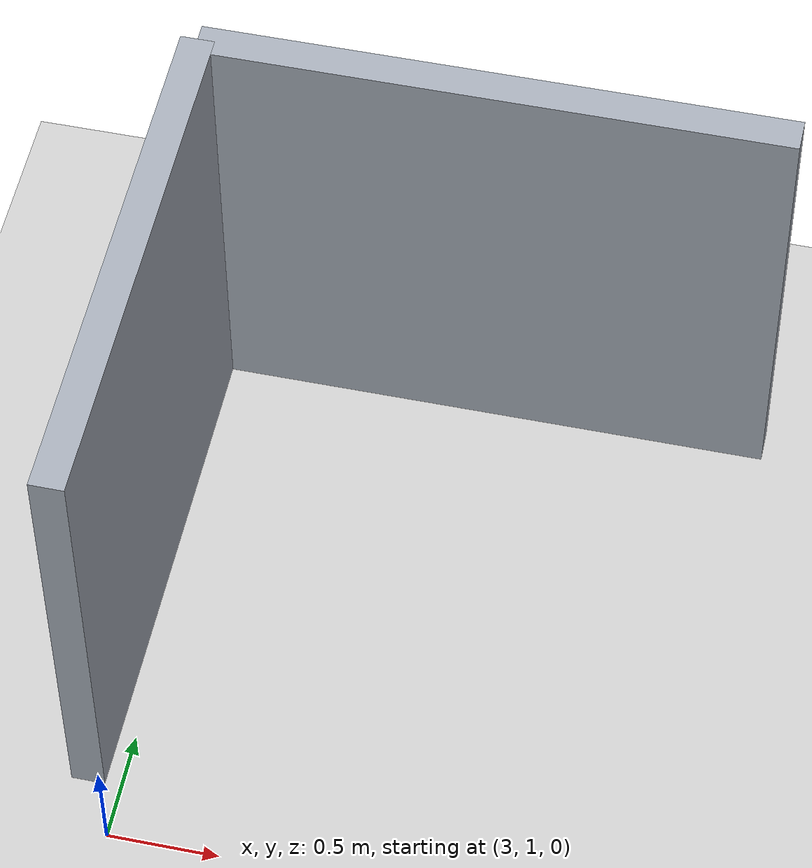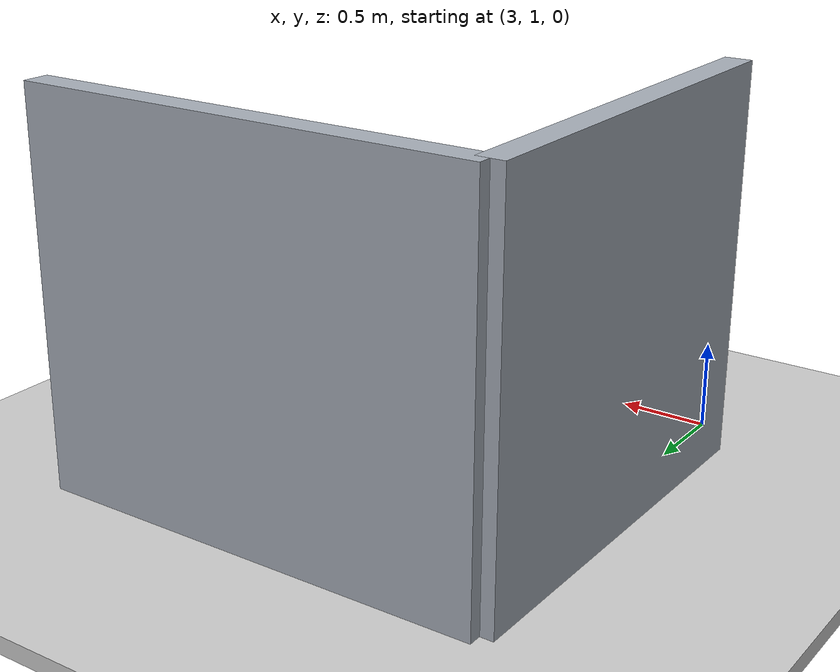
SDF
<sdf version="1.9">
 <world name="default">
  <model name="ground_plane">
   <static>true</static>
   <pose>4.75 0 -0.05 0 0 0</pose>
   <link name="body">
    <collision name="collision"><geometry><box><size>13.5 12 0.1</size></box></geometry></collision>
    <visual name="visual">
     <geometry><box><size>13.5 12 0.1</size></box></geometry>
     <material><ambient>0.8 0.8 0.8 1</ambient><diffuse>0.8 0.8 0.8 1</diffuse></material>
    </visual>
   </link>
  </model>
  <model name="room_1_1_-1">
   <static>true</static>
   <pose>2.8500000000000005 2.45 1.1 0 0 0</pose>
   <link name="body">
    <collision name="collision"><geometry><box><size>0.15 2.4 2.2</size></box></geometry></collision>
    <visual name="visual">
     <geometry><box><size>0.15 2.4 2.2</size></box></geometry>
     <material><ambient>0.65 0.68 0.72 1</ambient><diffuse>0.65 0.68 0.72 1</diffuse></material>
    </visual>
   </link>
  </model>
  <model name="room_end_1_1">
   <static>true</static>
   <pose>4.15 3.65 1.1 0 0 0</pose>
   <link name="body">
    <collision name="collision"><geometry><box><size>2.6 0.15 2.2</size></box></geometry></collision>
    <visual name="visual">
     <geometry><box><size>2.6 0.15 2.2</size></box></geometry>
     <material><ambient>0.65 0.68 0.72 1</ambient><diffuse>0.65 0.68 0.72 1</diffuse></material>
    </visual>
   </link>
  </model>
 </world>
</sdf>
